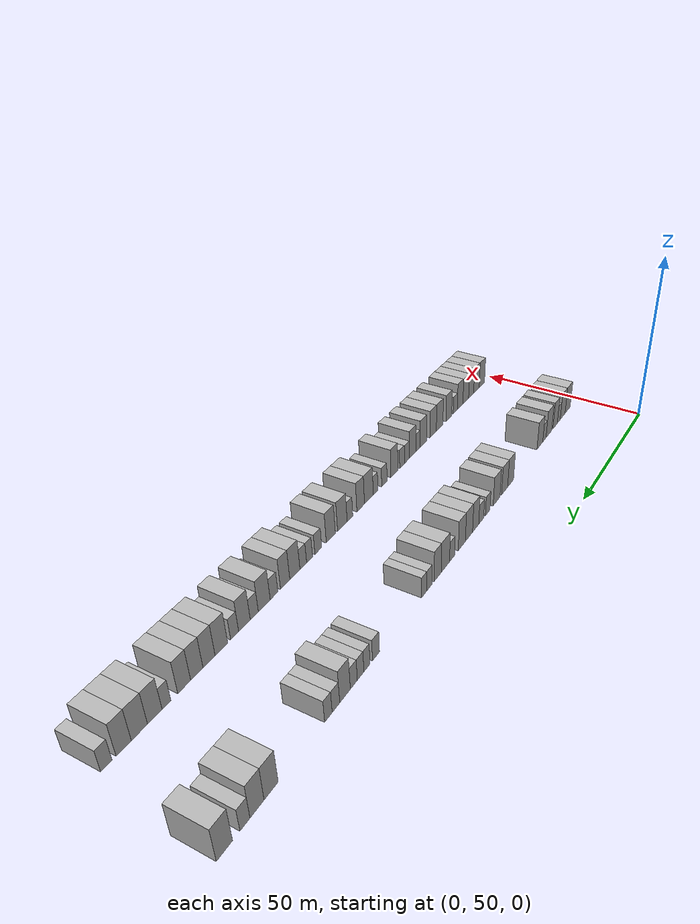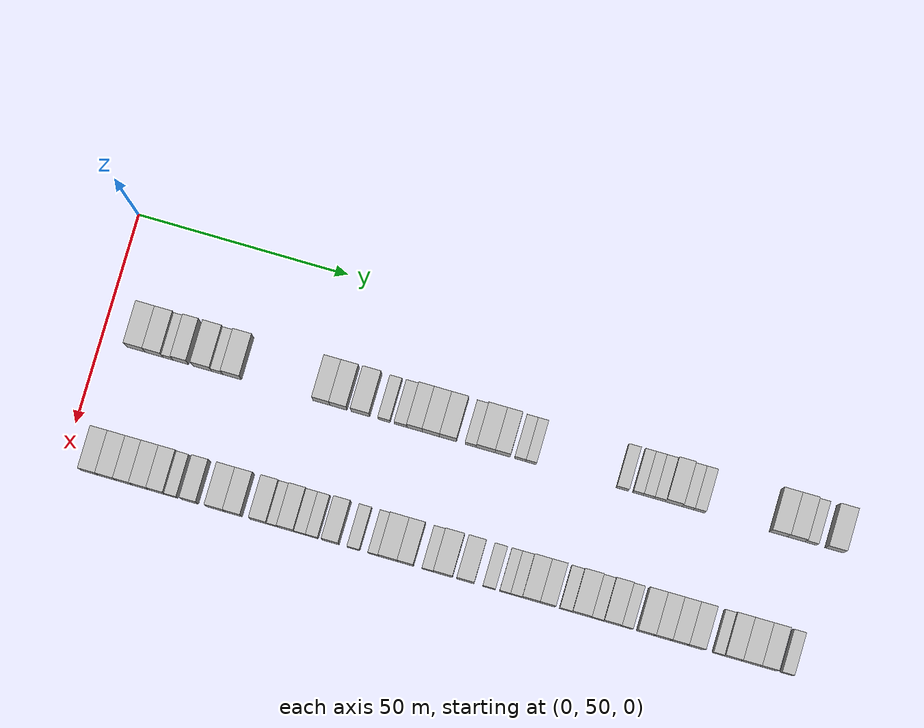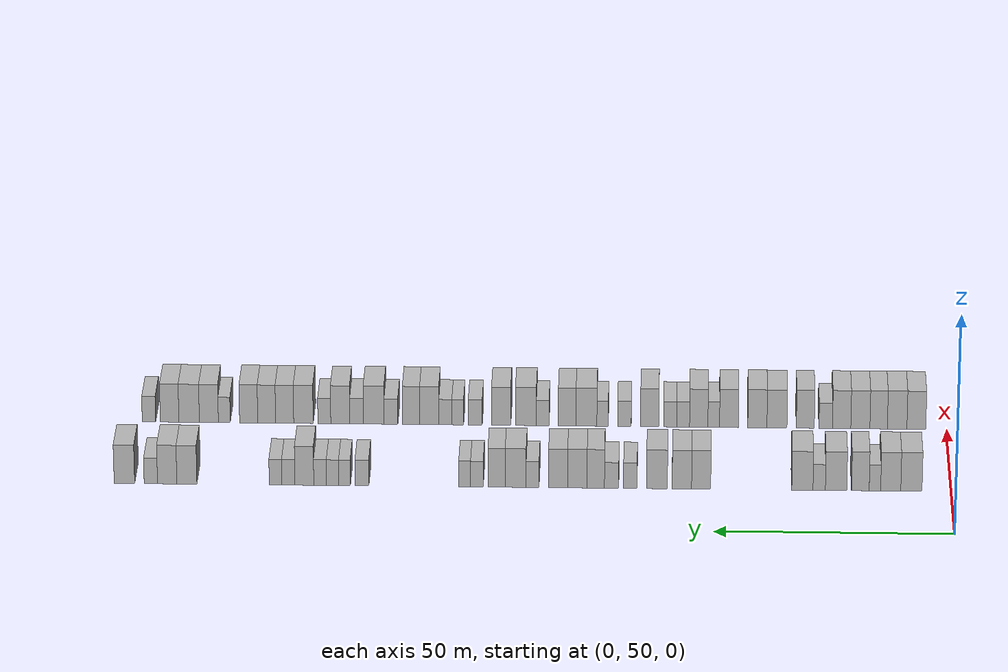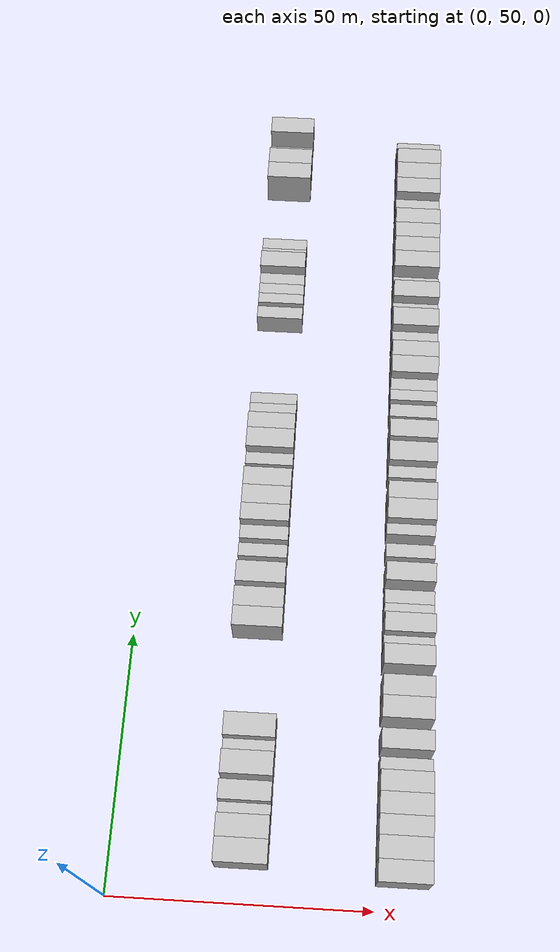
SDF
<sdf version="1.6">
 <world name="default">
  <model name="building_74">
   <static>1</static>
   <pose>25.0000 58.4364 0 0.000000 0.000000 0.000000</pose>
   <link name="link">
    <pose>0 0 4.50 0 0 0</pose>
    <collision name="collision"><geometry><box><size>10.0000 4.4470 9.0000</size></box></geometry></collision>
    <visual name="visual">
     <cast_shadows>0</cast_shadows>
     <geometry><box><size>10.0000 4.4470 9.0000</size></box></geometry>
     <material>
      <script>
       <uri>model://HANNAS_wall/materials/scripts</uri>
       <uri>model://HANNAS_wall/materials/textures</uri>
       <name>vrc/HANNAS_wall</name>
      </script>
     </material>
    </visual>
   </link>
  </model>
  <model name="building_75">
   <static>1</static>
   <pose>25.0000 62.7682 0 0.000000 0.000000 0.000000</pose>
   <link name="link">
    <pose>0 0 4.50 0 0 0</pose>
    <collision name="collision"><geometry><box><size>10.0000 4.2168 9.0000</size></box></geometry></collision>
    <visual name="visual">
     <cast_shadows>0</cast_shadows>
     <geometry><box><size>10.0000 4.2168 9.0000</size></box></geometry>
     <material>
      <script>
       <uri>model://HANNAS_wall/materials/scripts</uri>
       <uri>model://HANNAS_wall/materials/textures</uri>
       <name>vrc/HANNAS_wall</name>
      </script>
     </material>
    </visual>
   </link>
  </model>
  <model name="building_76">
   <static>1</static>
   <pose>25.0000 66.0802 0 0.000000 0.000000 0.000000</pose>
   <link name="link">
    <pose>0 0 3.00 0 0 0</pose>
    <collision name="collision"><geometry><box><size>10.0000 2.4072 6.0000</size></box></geometry></collision>
    <visual name="visual">
     <cast_shadows>0</cast_shadows>
     <geometry><box><size>10.0000 2.4072 6.0000</size></box></geometry>
     <material>
      <script>
       <uri>model://HANNAS_wall/materials/scripts</uri>
       <uri>model://HANNAS_wall/materials/textures</uri>
       <name>vrc/HANNAS_wall</name>
      </script>
     </material>
    </visual>
   </link>
  </model>
  <model name="building_77">
   <static>1</static>
   <pose>25.0000 69.1324 0 0.000000 0.000000 0.000000</pose>
   <link name="link">
    <pose>0 0 4.50 0 0 0</pose>
    <collision name="collision"><geometry><box><size>10.0000 3.6971 9.0000</size></box></geometry></collision>
    <visual name="visual">
     <cast_shadows>0</cast_shadows>
     <geometry><box><size>10.0000 3.6971 9.0000</size></box></geometry>
     <material>
      <script>
       <uri>model://HANNAS_wall/materials/scripts</uri>
       <uri>model://HANNAS_wall/materials/textures</uri>
       <name>vrc/HANNAS_wall</name>
      </script>
     </material>
    </visual>
   </link>
  </model>
  <model name="building_78">
   <static>1</static>
   <pose>25.0000 74.2274 0 0.000000 0.000000 0.000000</pose>
   <link name="link">
    <pose>0 0 4.50 0 0 0</pose>
    <collision name="collision"><geometry><box><size>10.0000 4.4929 9.0000</size></box></geometry></collision>
    <visual name="visual">
     <cast_shadows>0</cast_shadows>
     <geometry><box><size>10.0000 4.4929 9.0000</size></box></geometry>
     <material>
      <script>
       <uri>model://HANNAS_wall/materials/scripts</uri>
       <uri>model://HANNAS_wall/materials/textures</uri>
       <name>vrc/HANNAS_wall</name>
      </script>
     </material>
    </visual>
   </link>
  </model>
  <model name="building_79">
   <static>1</static>
   <pose>25.0000 77.7730 0 0.000000 0.000000 0.000000</pose>
   <link name="link">
    <pose>0 0 3.00 0 0 0</pose>
    <collision name="collision"><geometry><box><size>10.0000 2.5983 6.0000</size></box></geometry></collision>
    <visual name="visual">
     <cast_shadows>0</cast_shadows>
     <geometry><box><size>10.0000 2.5983 6.0000</size></box></geometry>
     <material>
      <script>
       <uri>model://HANNAS_wall/materials/scripts</uri>
       <uri>model://HANNAS_wall/materials/textures</uri>
       <name>vrc/HANNAS_wall</name>
      </script>
     </material>
    </visual>
   </link>
  </model>
  <model name="building_80">
   <static>1</static>
   <pose>25.0000 81.2971 0 0.000000 0.000000 0.000000</pose>
   <link name="link">
    <pose>0 0 4.50 0 0 0</pose>
    <collision name="collision"><geometry><box><size>10.0000 4.4498 9.0000</size></box></geometry></collision>
    <visual name="visual">
     <cast_shadows>0</cast_shadows>
     <geometry><box><size>10.0000 4.4498 9.0000</size></box></geometry>
     <material>
      <script>
       <uri>model://HANNAS_wall/materials/scripts</uri>
       <uri>model://HANNAS_wall/materials/textures</uri>
       <name>vrc/HANNAS_wall</name>
      </script>
     </material>
    </visual>
   </link>
  </model>
  <model name="building_81">
   <static>1</static>
   <pose>25.0000 102.5410 0 0.000000 0.000000 0.000000</pose>
   <link name="link">
    <pose>0 0 4.50 0 0 0</pose>
    <collision name="collision"><geometry><box><size>10.0000 4.0126 9.0000</size></box></geometry></collision>
    <visual name="visual">
     <cast_shadows>0</cast_shadows>
     <geometry><box><size>10.0000 4.0126 9.0000</size></box></geometry>
     <material>
      <script>
       <uri>model://HANNAS_wall/materials/scripts</uri>
       <uri>model://HANNAS_wall/materials/textures</uri>
       <name>vrc/HANNAS_wall</name>
      </script>
     </material>
    </visual>
   </link>
  </model>
  <model name="building_82">
   <static>1</static>
   <pose>25.0000 106.5819 0 0.000000 0.000000 0.000000</pose>
   <link name="link">
    <pose>0 0 4.50 0 0 0</pose>
    <collision name="collision"><geometry><box><size>10.0000 4.0693 9.0000</size></box></geometry></collision>
    <visual name="visual">
     <cast_shadows>0</cast_shadows>
     <geometry><box><size>10.0000 4.0693 9.0000</size></box></geometry>
     <material>
      <script>
       <uri>model://HANNAS_wall/materials/scripts</uri>
       <uri>model://HANNAS_wall/materials/textures</uri>
       <name>vrc/HANNAS_wall</name>
      </script>
     </material>
    </visual>
   </link>
  </model>
  <model name="building_83">
   <static>1</static>
   <pose>25.0000 111.8048 0 0.000000 0.000000 0.000000</pose>
   <link name="link">
    <pose>0 0 4.50 0 0 0</pose>
    <collision name="collision"><geometry><box><size>10.0000 4.3765 9.0000</size></box></geometry></collision>
    <visual name="visual">
     <cast_shadows>0</cast_shadows>
     <geometry><box><size>10.0000 4.3765 9.0000</size></box></geometry>
     <material>
      <script>
       <uri>model://HANNAS_wall/materials/scripts</uri>
       <uri>model://HANNAS_wall/materials/textures</uri>
       <name>vrc/HANNAS_wall</name>
      </script>
     </material>
    </visual>
   </link>
  </model>
  <model name="building_84">
   <static>1</static>
   <pose>25.0000 117.4179 0 0.000000 0.000000 0.000000</pose>
   <link name="link">
    <pose>0 0 3.00 0 0 0</pose>
    <collision name="collision"><geometry><box><size>10.0000 2.8498 6.0000</size></box></geometry></collision>
    <visual name="visual">
     <cast_shadows>0</cast_shadows>
     <geometry><box><size>10.0000 2.8498 6.0000</size></box></geometry>
     <material>
      <script>
       <uri>model://HANNAS_wall/materials/scripts</uri>
       <uri>model://HANNAS_wall/materials/textures</uri>
       <name>vrc/HANNAS_wall</name>
      </script>
     </material>
    </visual>
   </link>
  </model>
  <model name="building_85">
   <static>1</static>
   <pose>25.0000 121.3395 0 0.000000 0.000000 0.000000</pose>
   <link name="link">
    <pose>0 0 3.00 0 0 0</pose>
    <collision name="collision"><geometry><box><size>10.0000 2.9932 6.0000</size></box></geometry></collision>
    <visual name="visual">
     <cast_shadows>0</cast_shadows>
     <geometry><box><size>10.0000 2.9932 6.0000</size></box></geometry>
     <material>
      <script>
       <uri>model://HANNAS_wall/materials/scripts</uri>
       <uri>model://HANNAS_wall/materials/textures</uri>
       <name>vrc/HANNAS_wall</name>
      </script>
     </material>
    </visual>
   </link>
  </model>
  <model name="building_86">
   <static>1</static>
   <pose>25.0000 124.6564 0 0.000000 0.000000 0.000000</pose>
   <link name="link">
    <pose>0 0 4.50 0 0 0</pose>
    <collision name="collision"><geometry><box><size>10.0000 3.6406 9.0000</size></box></geometry></collision>
    <visual name="visual">
     <cast_shadows>0</cast_shadows>
     <geometry><box><size>10.0000 3.6406 9.0000</size></box></geometry>
     <material>
      <script>
       <uri>model://HANNAS_wall/materials/scripts</uri>
       <uri>model://HANNAS_wall/materials/textures</uri>
       <name>vrc/HANNAS_wall</name>
      </script>
     </material>
    </visual>
   </link>
  </model>
  <model name="building_87">
   <static>1</static>
   <pose>25.0000 128.5270 0 0.000000 0.000000 0.000000</pose>
   <link name="link">
    <pose>0 0 4.50 0 0 0</pose>
    <collision name="collision"><geometry><box><size>10.0000 4.1006 9.0000</size></box></geometry></collision>
    <visual name="visual">
     <cast_shadows>0</cast_shadows>
     <geometry><box><size>10.0000 4.1006 9.0000</size></box></geometry>
     <material>
      <script>
       <uri>model://HANNAS_wall/materials/scripts</uri>
       <uri>model://HANNAS_wall/materials/textures</uri>
       <name>vrc/HANNAS_wall</name>
      </script>
     </material>
    </visual>
   </link>
  </model>
  <model name="building_88">
   <static>1</static>
   <pose>25.0000 132.5769 0 0.000000 0.000000 0.000000</pose>
   <link name="link">
    <pose>0 0 4.50 0 0 0</pose>
    <collision name="collision"><geometry><box><size>10.0000 3.9992 9.0000</size></box></geometry></collision>
    <visual name="visual">
     <cast_shadows>0</cast_shadows>
     <geometry><box><size>10.0000 3.9992 9.0000</size></box></geometry>
     <material>
      <script>
       <uri>model://HANNAS_wall/materials/scripts</uri>
       <uri>model://HANNAS_wall/materials/textures</uri>
       <name>vrc/HANNAS_wall</name>
      </script>
     </material>
    </visual>
   </link>
  </model>
  <model name="building_89">
   <static>1</static>
   <pose>25.0000 137.9296 0 0.000000 0.000000 0.000000</pose>
   <link name="link">
    <pose>0 0 3.00 0 0 0</pose>
    <collision name="collision"><geometry><box><size>10.0000 2.7063 6.0000</size></box></geometry></collision>
    <visual name="visual">
     <cast_shadows>0</cast_shadows>
     <geometry><box><size>10.0000 2.7063 6.0000</size></box></geometry>
     <material>
      <script>
       <uri>model://HANNAS_wall/materials/scripts</uri>
       <uri>model://HANNAS_wall/materials/textures</uri>
       <name>vrc/HANNAS_wall</name>
      </script>
     </material>
    </visual>
   </link>
  </model>
  <model name="building_90">
   <static>1</static>
   <pose>25.0000 141.4852 0 0.000000 0.000000 0.000000</pose>
   <link name="link">
    <pose>0 0 4.50 0 0 0</pose>
    <collision name="collision"><geometry><box><size>10.0000 4.4048 9.0000</size></box></geometry></collision>
    <visual name="visual">
     <cast_shadows>0</cast_shadows>
     <geometry><box><size>10.0000 4.4048 9.0000</size></box></geometry>
     <material>
      <script>
       <uri>model://HANNAS_wall/materials/scripts</uri>
       <uri>model://HANNAS_wall/materials/textures</uri>
       <name>vrc/HANNAS_wall</name>
      </script>
     </material>
    </visual>
   </link>
  </model>
  <model name="building_91">
   <static>1</static>
   <pose>25.0000 145.4940 0 0.000000 0.000000 0.000000</pose>
   <link name="link">
    <pose>0 0 4.50 0 0 0</pose>
    <collision name="collision"><geometry><box><size>10.0000 3.6129 9.0000</size></box></geometry></collision>
    <visual name="visual">
     <cast_shadows>0</cast_shadows>
     <geometry><box><size>10.0000 3.6129 9.0000</size></box></geometry>
     <material>
      <script>
       <uri>model://HANNAS_wall/materials/scripts</uri>
       <uri>model://HANNAS_wall/materials/textures</uri>
       <name>vrc/HANNAS_wall</name>
      </script>
     </material>
    </visual>
   </link>
  </model>
  <model name="building_92">
   <static>1</static>
   <pose>25.0000 149.6299 0 0.000000 0.000000 0.000000</pose>
   <link name="link">
    <pose>0 0 3.00 0 0 0</pose>
    <collision name="collision"><geometry><box><size>10.0000 2.6588 6.0000</size></box></geometry></collision>
    <visual name="visual">
     <cast_shadows>0</cast_shadows>
     <geometry><box><size>10.0000 2.6588 6.0000</size></box></geometry>
     <material>
      <script>
       <uri>model://HANNAS_wall/materials/scripts</uri>
       <uri>model://HANNAS_wall/materials/textures</uri>
       <name>vrc/HANNAS_wall</name>
      </script>
     </material>
    </visual>
   </link>
  </model>
  <model name="building_93">
   <static>1</static>
   <pose>25.0000 152.2024 0 0.000000 0.000000 0.000000</pose>
   <link name="link">
    <pose>0 0 3.00 0 0 0</pose>
    <collision name="collision"><geometry><box><size>10.0000 2.4861 6.0000</size></box></geometry></collision>
    <visual name="visual">
     <cast_shadows>0</cast_shadows>
     <geometry><box><size>10.0000 2.4861 6.0000</size></box></geometry>
     <material>
      <script>
       <uri>model://HANNAS_wall/materials/scripts</uri>
       <uri>model://HANNAS_wall/materials/textures</uri>
       <name>vrc/HANNAS_wall</name>
      </script>
     </material>
    </visual>
   </link>
  </model>
  <model name="building_94">
   <static>1</static>
   <pose>25.0000 173.7873 0 0.000000 0.000000 0.000000</pose>
   <link name="link">
    <pose>0 0 3.00 0 0 0</pose>
    <collision name="collision"><geometry><box><size>10.0000 2.8946 6.0000</size></box></geometry></collision>
    <visual name="visual">
     <cast_shadows>0</cast_shadows>
     <geometry><box><size>10.0000 2.8946 6.0000</size></box></geometry>
     <material>
      <script>
       <uri>model://HANNAS_wall/materials/scripts</uri>
       <uri>model://HANNAS_wall/materials/textures</uri>
       <name>vrc/HANNAS_wall</name>
      </script>
     </material>
    </visual>
   </link>
  </model>
  <model name="building_95">
   <static>1</static>
   <pose>25.0000 177.4593 0 0.000000 0.000000 0.000000</pose>
   <link name="link">
    <pose>0 0 3.00 0 0 0</pose>
    <collision name="collision"><geometry><box><size>10.0000 2.4493 6.0000</size></box></geometry></collision>
    <visual name="visual">
     <cast_shadows>0</cast_shadows>
     <geometry><box><size>10.0000 2.4493 6.0000</size></box></geometry>
     <material>
      <script>
       <uri>model://HANNAS_wall/materials/scripts</uri>
       <uri>model://HANNAS_wall/materials/textures</uri>
       <name>vrc/HANNAS_wall</name>
      </script>
     </material>
    </visual>
   </link>
  </model>
  <model name="building_96">
   <static>1</static>
   <pose>25.0000 179.9692 0 0.000000 0.000000 0.000000</pose>
   <link name="link">
    <pose>0 0 3.00 0 0 0</pose>
    <collision name="collision"><geometry><box><size>10.0000 2.5704 6.0000</size></box></geometry></collision>
    <visual name="visual">
     <cast_shadows>0</cast_shadows>
     <geometry><box><size>10.0000 2.5704 6.0000</size></box></geometry>
     <material>
      <script>
       <uri>model://HANNAS_wall/materials/scripts</uri>
       <uri>model://HANNAS_wall/materials/textures</uri>
       <name>vrc/HANNAS_wall</name>
      </script>
     </material>
    </visual>
   </link>
  </model>
  <model name="building_97">
   <static>1</static>
   <pose>25.0000 182.5951 0 0.000000 0.000000 0.000000</pose>
   <link name="link">
    <pose>0 0 3.00 0 0 0</pose>
    <collision name="collision"><geometry><box><size>10.0000 2.6813 6.0000</size></box></geometry></collision>
    <visual name="visual">
     <cast_shadows>0</cast_shadows>
     <geometry><box><size>10.0000 2.6813 6.0000</size></box></geometry>
     <material>
      <script>
       <uri>model://HANNAS_wall/materials/scripts</uri>
       <uri>model://HANNAS_wall/materials/textures</uri>
       <name>vrc/HANNAS_wall</name>
      </script>
     </material>
    </visual>
   </link>
  </model>
  <model name="building_98">
   <static>1</static>
   <pose>25.0000 185.9147 0 0.000000 0.000000 0.000000</pose>
   <link name="link">
    <pose>0 0 4.50 0 0 0</pose>
    <collision name="collision"><geometry><box><size>10.0000 3.9581 9.0000</size></box></geometry></collision>
    <visual name="visual">
     <cast_shadows>0</cast_shadows>
     <geometry><box><size>10.0000 3.9581 9.0000</size></box></geometry>
     <material>
      <script>
       <uri>model://HANNAS_wall/materials/scripts</uri>
       <uri>model://HANNAS_wall/materials/textures</uri>
       <name>vrc/HANNAS_wall</name>
      </script>
     </material>
    </visual>
   </link>
  </model>
  <model name="building_99">
   <static>1</static>
   <pose>25.0000 189.2692 0 0.000000 0.000000 0.000000</pose>
   <link name="link">
    <pose>0 0 3.00 0 0 0</pose>
    <collision name="collision"><geometry><box><size>10.0000 2.7509 6.0000</size></box></geometry></collision>
    <visual name="visual">
     <cast_shadows>0</cast_shadows>
     <geometry><box><size>10.0000 2.7509 6.0000</size></box></geometry>
     <material>
      <script>
       <uri>model://HANNAS_wall/materials/scripts</uri>
       <uri>model://HANNAS_wall/materials/textures</uri>
       <name>vrc/HANNAS_wall</name>
      </script>
     </material>
    </visual>
   </link>
  </model>
  <model name="building_100">
   <static>1</static>
   <pose>25.0000 191.9741 0 0.000000 0.000000 0.000000</pose>
   <link name="link">
    <pose>0 0 3.00 0 0 0</pose>
    <collision name="collision"><geometry><box><size>10.0000 2.6590 6.0000</size></box></geometry></collision>
    <visual name="visual">
     <cast_shadows>0</cast_shadows>
     <geometry><box><size>10.0000 2.6590 6.0000</size></box></geometry>
     <material>
      <script>
       <uri>model://HANNAS_wall/materials/scripts</uri>
       <uri>model://HANNAS_wall/materials/textures</uri>
       <name>vrc/HANNAS_wall</name>
      </script>
     </material>
    </visual>
   </link>
  </model>
  <model name="building_101">
   <static>1</static>
   <pose>25.0000 210.6420 0 0.000000 0.000000 0.000000</pose>
   <link name="link">
    <pose>0 0 4.50 0 0 0</pose>
    <collision name="collision"><geometry><box><size>10.0000 4.2256 9.0000</size></box></geometry></collision>
    <visual name="visual">
     <cast_shadows>0</cast_shadows>
     <geometry><box><size>10.0000 4.2256 9.0000</size></box></geometry>
     <material>
      <script>
       <uri>model://HANNAS_wall/materials/scripts</uri>
       <uri>model://HANNAS_wall/materials/textures</uri>
       <name>vrc/HANNAS_wall</name>
      </script>
     </material>
    </visual>
   </link>
  </model>
  <model name="building_102">
   <static>1</static>
   <pose>25.0000 214.7899 0 0.000000 0.000000 0.000000</pose>
   <link name="link">
    <pose>0 0 4.50 0 0 0</pose>
    <collision name="collision"><geometry><box><size>10.0000 4.0702 9.0000</size></box></geometry></collision>
    <visual name="visual">
     <cast_shadows>0</cast_shadows>
     <geometry><box><size>10.0000 4.0702 9.0000</size></box></geometry>
     <material>
      <script>
       <uri>model://HANNAS_wall/materials/scripts</uri>
       <uri>model://HANNAS_wall/materials/textures</uri>
       <name>vrc/HANNAS_wall</name>
      </script>
     </material>
    </visual>
   </link>
  </model>
  <model name="building_103">
   <static>1</static>
   <pose>25.0000 218.2311 0 0.000000 0.000000 0.000000</pose>
   <link name="link">
    <pose>0 0 3.00 0 0 0</pose>
    <collision name="collision"><geometry><box><size>10.0000 2.8124 6.0000</size></box></geometry></collision>
    <visual name="visual">
     <cast_shadows>0</cast_shadows>
     <geometry><box><size>10.0000 2.8124 6.0000</size></box></geometry>
     <material>
      <script>
       <uri>model://HANNAS_wall/materials/scripts</uri>
       <uri>model://HANNAS_wall/materials/textures</uri>
       <name>vrc/HANNAS_wall</name>
      </script>
     </material>
    </visual>
   </link>
  </model>
  <model name="building_104">
   <static>1</static>
   <pose>25.0000 223.7945 0 0.000000 0.000000 0.000000</pose>
   <link name="link">
    <pose>0 0 4.50 0 0 0</pose>
    <collision name="collision"><geometry><box><size>10.0000 4.3144 9.0000</size></box></geometry></collision>
    <visual name="visual">
     <cast_shadows>0</cast_shadows>
     <geometry><box><size>10.0000 4.3144 9.0000</size></box></geometry>
     <material>
      <script>
       <uri>model://HANNAS_wall/materials/scripts</uri>
       <uri>model://HANNAS_wall/materials/textures</uri>
       <name>vrc/HANNAS_wall</name>
      </script>
     </material>
    </visual>
   </link>
  </model>
  <model name="building_176">
   <static>1</static>
   <pose>55.0000 56.4914 0 0.000000 0.000000 0.000000</pose>
   <link name="link">
    <pose>0 0 4.50 0 0 0</pose>
    <collision name="collision"><geometry><box><size>10.0000 4.0352 9.0000</size></box></geometry></collision>
    <visual name="visual">
     <cast_shadows>0</cast_shadows>
     <geometry><box><size>10.0000 4.0352 9.0000</size></box></geometry>
     <material>
      <script>
       <uri>model://HANNAS_wall/materials/scripts</uri>
       <uri>model://HANNAS_wall/materials/textures</uri>
       <name>vrc/HANNAS_wall</name>
      </script>
     </material>
    </visual>
   </link>
  </model>
  <model name="building_177">
   <static>1</static>
   <pose>55.0000 60.6003 0 0.000000 0.000000 0.000000</pose>
   <link name="link">
    <pose>0 0 4.50 0 0 0</pose>
    <collision name="collision"><geometry><box><size>10.0000 4.1827 9.0000</size></box></geometry></collision>
    <visual name="visual">
     <cast_shadows>0</cast_shadows>
     <geometry><box><size>10.0000 4.1827 9.0000</size></box></geometry>
     <material>
      <script>
       <uri>model://HANNAS_wall/materials/scripts</uri>
       <uri>model://HANNAS_wall/materials/textures</uri>
       <name>vrc/HANNAS_wall</name>
      </script>
     </material>
    </visual>
   </link>
  </model>
  <model name="building_178">
   <static>1</static>
   <pose>55.0000 64.5555 0 0.000000 0.000000 0.000000</pose>
   <link name="link">
    <pose>0 0 4.50 0 0 0</pose>
    <collision name="collision"><geometry><box><size>10.0000 3.7278 9.0000</size></box></geometry></collision>
    <visual name="visual">
     <cast_shadows>0</cast_shadows>
     <geometry><box><size>10.0000 3.7278 9.0000</size></box></geometry>
     <material>
      <script>
       <uri>model://HANNAS_wall/materials/scripts</uri>
       <uri>model://HANNAS_wall/materials/textures</uri>
       <name>vrc/HANNAS_wall</name>
      </script>
     </material>
    </visual>
   </link>
  </model>
  <model name="building_179">
   <static>1</static>
   <pose>55.0000 68.4614 0 0.000000 0.000000 0.000000</pose>
   <link name="link">
    <pose>0 0 4.50 0 0 0</pose>
    <collision name="collision"><geometry><box><size>10.0000 4.0839 9.0000</size></box></geometry></collision>
    <visual name="visual">
     <cast_shadows>0</cast_shadows>
     <geometry><box><size>10.0000 4.0839 9.0000</size></box></geometry>
     <material>
      <script>
       <uri>model://HANNAS_wall/materials/scripts</uri>
       <uri>model://HANNAS_wall/materials/textures</uri>
       <name>vrc/HANNAS_wall</name>
      </script>
     </material>
    </visual>
   </link>
  </model>
  <model name="building_180">
   <static>1</static>
   <pose>55.0000 72.4666 0 0.000000 0.000000 0.000000</pose>
   <link name="link">
    <pose>0 0 4.50 0 0 0</pose>
    <collision name="collision"><geometry><box><size>10.0000 3.9265 9.0000</size></box></geometry></collision>
    <visual name="visual">
     <cast_shadows>0</cast_shadows>
     <geometry><box><size>10.0000 3.9265 9.0000</size></box></geometry>
     <material>
      <script>
       <uri>model://HANNAS_wall/materials/scripts</uri>
       <uri>model://HANNAS_wall/materials/textures</uri>
       <name>vrc/HANNAS_wall</name>
      </script>
     </material>
    </visual>
   </link>
  </model>
  <model name="building_181">
   <static>1</static>
   <pose>55.0000 75.8682 0 0.000000 0.000000 0.000000</pose>
   <link name="link">
    <pose>0 0 3.00 0 0 0</pose>
    <collision name="collision"><geometry><box><size>10.0000 2.8766 6.0000</size></box></geometry></collision>
    <visual name="visual">
     <cast_shadows>0</cast_shadows>
     <geometry><box><size>10.0000 2.8766 6.0000</size></box></geometry>
     <material>
      <script>
       <uri>model://HANNAS_wall/materials/scripts</uri>
       <uri>model://HANNAS_wall/materials/textures</uri>
       <name>vrc/HANNAS_wall</name>
      </script>
     </material>
    </visual>
   </link>
  </model>
  <model name="building_182">
   <static>1</static>
   <pose>55.0000 80.2283 0 0.000000 0.000000 0.000000</pose>
   <link name="link">
    <pose>0 0 4.50 0 0 0</pose>
    <collision name="collision"><geometry><box><size>10.0000 3.8437 9.0000</size></box></geometry></collision>
    <visual name="visual">
     <cast_shadows>0</cast_shadows>
     <geometry><box><size>10.0000 3.8437 9.0000</size></box></geometry>
     <material>
      <script>
       <uri>model://HANNAS_wall/materials/scripts</uri>
       <uri>model://HANNAS_wall/materials/textures</uri>
       <name>vrc/HANNAS_wall</name>
      </script>
     </material>
    </visual>
   </link>
  </model>
  <model name="building_183">
   <static>1</static>
   <pose>55.0000 86.2963 0 0.000000 0.000000 0.000000</pose>
   <link name="link">
    <pose>0 0 4.50 0 0 0</pose>
    <collision name="collision"><geometry><box><size>10.0000 4.2923 9.0000</size></box></geometry></collision>
    <visual name="visual">
     <cast_shadows>0</cast_shadows>
     <geometry><box><size>10.0000 4.2923 9.0000</size></box></geometry>
     <material>
      <script>
       <uri>model://HANNAS_wall/materials/scripts</uri>
       <uri>model://HANNAS_wall/materials/textures</uri>
       <name>vrc/HANNAS_wall</name>
      </script>
     </material>
    </visual>
   </link>
  </model>
  <model name="building_184">
   <static>1</static>
   <pose>55.0000 90.4893 0 0.000000 0.000000 0.000000</pose>
   <link name="link">
    <pose>0 0 4.50 0 0 0</pose>
    <collision name="collision"><geometry><box><size>10.0000 4.0936 9.0000</size></box></geometry></collision>
    <visual name="visual">
     <cast_shadows>0</cast_shadows>
     <geometry><box><size>10.0000 4.0936 9.0000</size></box></geometry>
     <material>
      <script>
       <uri>model://HANNAS_wall/materials/scripts</uri>
       <uri>model://HANNAS_wall/materials/textures</uri>
       <name>vrc/HANNAS_wall</name>
      </script>
     </material>
    </visual>
   </link>
  </model>
  <model name="building_185">
   <static>1</static>
   <pose>55.0000 96.5590 0 0.000000 0.000000 0.000000</pose>
   <link name="link">
    <pose>0 0 4.50 0 0 0</pose>
    <collision name="collision"><geometry><box><size>10.0000 4.0458 9.0000</size></box></geometry></collision>
    <visual name="visual">
     <cast_shadows>0</cast_shadows>
     <geometry><box><size>10.0000 4.0458 9.0000</size></box></geometry>
     <material>
      <script>
       <uri>model://HANNAS_wall/materials/scripts</uri>
       <uri>model://HANNAS_wall/materials/textures</uri>
       <name>vrc/HANNAS_wall</name>
      </script>
     </material>
    </visual>
   </link>
  </model>
  <model name="building_186">
   <static>1</static>
   <pose>55.0000 99.8261 0 0.000000 0.000000 0.000000</pose>
   <link name="link">
    <pose>0 0 3.00 0 0 0</pose>
    <collision name="collision"><geometry><box><size>10.0000 2.4885 6.0000</size></box></geometry></collision>
    <visual name="visual">
     <cast_shadows>0</cast_shadows>
     <geometry><box><size>10.0000 2.4885 6.0000</size></box></geometry>
     <material>
      <script>
       <uri>model://HANNAS_wall/materials/scripts</uri>
       <uri>model://HANNAS_wall/materials/textures</uri>
       <name>vrc/HANNAS_wall</name>
      </script>
     </material>
    </visual>
   </link>
  </model>
  <model name="building_187">
   <static>1</static>
   <pose>55.0000 103.0342 0 0.000000 0.000000 0.000000</pose>
   <link name="link">
    <pose>0 0 4.50 0 0 0</pose>
    <collision name="collision"><geometry><box><size>10.0000 3.9277 9.0000</size></box></geometry></collision>
    <visual name="visual">
     <cast_shadows>0</cast_shadows>
     <geometry><box><size>10.0000 3.9277 9.0000</size></box></geometry>
     <material>
      <script>
       <uri>model://HANNAS_wall/materials/scripts</uri>
       <uri>model://HANNAS_wall/materials/textures</uri>
       <name>vrc/HANNAS_wall</name>
      </script>
     </material>
    </visual>
   </link>
  </model>
  <model name="building_188">
   <static>1</static>
   <pose>55.0000 106.3616 0 0.000000 0.000000 0.000000</pose>
   <link name="link">
    <pose>0 0 3.00 0 0 0</pose>
    <collision name="collision"><geometry><box><size>10.0000 2.7270 6.0000</size></box></geometry></collision>
    <visual name="visual">
     <cast_shadows>0</cast_shadows>
     <geometry><box><size>10.0000 2.7270 6.0000</size></box></geometry>
     <material>
      <script>
       <uri>model://HANNAS_wall/materials/scripts</uri>
       <uri>model://HANNAS_wall/materials/textures</uri>
       <name>vrc/HANNAS_wall</name>
      </script>
     </material>
    </visual>
   </link>
  </model>
  <model name="building_189">
   <static>1</static>
   <pose>55.0000 109.1446 0 0.000000 0.000000 0.000000</pose>
   <link name="link">
    <pose>0 0 3.00 0 0 0</pose>
    <collision name="collision"><geometry><box><size>10.0000 2.8391 6.0000</size></box></geometry></collision>
    <visual name="visual">
     <cast_shadows>0</cast_shadows>
     <geometry><box><size>10.0000 2.8391 6.0000</size></box></geometry>
     <material>
      <script>
       <uri>model://HANNAS_wall/materials/scripts</uri>
       <uri>model://HANNAS_wall/materials/textures</uri>
       <name>vrc/HANNAS_wall</name>
      </script>
     </material>
    </visual>
   </link>
  </model>
  <model name="building_190">
   <static>1</static>
   <pose>55.0000 113.5258 0 0.000000 0.000000 0.000000</pose>
   <link name="link">
    <pose>0 0 4.50 0 0 0</pose>
    <collision name="collision"><geometry><box><size>10.0000 3.9232 9.0000</size></box></geometry></collision>
    <visual name="visual">
     <cast_shadows>0</cast_shadows>
     <geometry><box><size>10.0000 3.9232 9.0000</size></box></geometry>
     <material>
      <script>
       <uri>model://HANNAS_wall/materials/scripts</uri>
       <uri>model://HANNAS_wall/materials/textures</uri>
       <name>vrc/HANNAS_wall</name>
      </script>
     </material>
    </visual>
   </link>
  </model>
  <model name="building_191">
   <static>1</static>
   <pose>55.0000 118.9439 0 0.000000 0.000000 0.000000</pose>
   <link name="link">
    <pose>0 0 3.00 0 0 0</pose>
    <collision name="collision"><geometry><box><size>10.0000 2.9131 6.0000</size></box></geometry></collision>
    <visual name="visual">
     <cast_shadows>0</cast_shadows>
     <geometry><box><size>10.0000 2.9131 6.0000</size></box></geometry>
     <material>
      <script>
       <uri>model://HANNAS_wall/materials/scripts</uri>
       <uri>model://HANNAS_wall/materials/textures</uri>
       <name>vrc/HANNAS_wall</name>
      </script>
     </material>
    </visual>
   </link>
  </model>
  <model name="building_192">
   <static>1</static>
   <pose>55.0000 123.6167 0 0.000000 0.000000 0.000000</pose>
   <link name="link">
    <pose>0 0 3.00 0 0 0</pose>
    <collision name="collision"><geometry><box><size>10.0000 2.4324 6.0000</size></box></geometry></collision>
    <visual name="visual">
     <cast_shadows>0</cast_shadows>
     <geometry><box><size>10.0000 2.4324 6.0000</size></box></geometry>
     <material>
      <script>
       <uri>model://HANNAS_wall/materials/scripts</uri>
       <uri>model://HANNAS_wall/materials/textures</uri>
       <name>vrc/HANNAS_wall</name>
      </script>
     </material>
    </visual>
   </link>
  </model>
  <model name="building_193">
   <static>1</static>
   <pose>55.0000 127.0736 0 0.000000 0.000000 0.000000</pose>
   <link name="link">
    <pose>0 0 4.50 0 0 0</pose>
    <collision name="collision"><geometry><box><size>10.0000 4.4814 9.0000</size></box></geometry></collision>
    <visual name="visual">
     <cast_shadows>0</cast_shadows>
     <geometry><box><size>10.0000 4.4814 9.0000</size></box></geometry>
     <material>
      <script>
       <uri>model://HANNAS_wall/materials/scripts</uri>
       <uri>model://HANNAS_wall/materials/textures</uri>
       <name>vrc/HANNAS_wall</name>
      </script>
     </material>
    </visual>
   </link>
  </model>
  <model name="building_194">
   <static>1</static>
   <pose>55.0000 131.2023 0 0.000000 0.000000 0.000000</pose>
   <link name="link">
    <pose>0 0 4.50 0 0 0</pose>
    <collision name="collision"><geometry><box><size>10.0000 3.7761 9.0000</size></box></geometry></collision>
    <visual name="visual">
     <cast_shadows>0</cast_shadows>
     <geometry><box><size>10.0000 3.7761 9.0000</size></box></geometry>
     <material>
      <script>
       <uri>model://HANNAS_wall/materials/scripts</uri>
       <uri>model://HANNAS_wall/materials/textures</uri>
       <name>vrc/HANNAS_wall</name>
      </script>
     </material>
    </visual>
   </link>
  </model>
  <model name="building_195">
   <static>1</static>
   <pose>55.0000 136.4427 0 0.000000 0.000000 0.000000</pose>
   <link name="link">
    <pose>0 0 3.00 0 0 0</pose>
    <collision name="collision"><geometry><box><size>10.0000 2.7045 6.0000</size></box></geometry></collision>
    <visual name="visual">
     <cast_shadows>0</cast_shadows>
     <geometry><box><size>10.0000 2.7045 6.0000</size></box></geometry>
     <material>
      <script>
       <uri>model://HANNAS_wall/materials/scripts</uri>
       <uri>model://HANNAS_wall/materials/textures</uri>
       <name>vrc/HANNAS_wall</name>
      </script>
     </material>
    </visual>
   </link>
  </model>
  <model name="building_196">
   <static>1</static>
   <pose>55.0000 140.0375 0 0.000000 0.000000 0.000000</pose>
   <link name="link">
    <pose>0 0 4.50 0 0 0</pose>
    <collision name="collision"><geometry><box><size>10.0000 4.4852 9.0000</size></box></geometry></collision>
    <visual name="visual">
     <cast_shadows>0</cast_shadows>
     <geometry><box><size>10.0000 4.4852 9.0000</size></box></geometry>
     <material>
      <script>
       <uri>model://HANNAS_wall/materials/scripts</uri>
       <uri>model://HANNAS_wall/materials/textures</uri>
       <name>vrc/HANNAS_wall</name>
      </script>
     </material>
    </visual>
   </link>
  </model>
  <model name="building_197">
   <static>1</static>
   <pose>55.0000 145.3344 0 0.000000 0.000000 0.000000</pose>
   <link name="link">
    <pose>0 0 4.50 0 0 0</pose>
    <collision name="collision"><geometry><box><size>10.0000 4.1084 9.0000</size></box></geometry></collision>
    <visual name="visual">
     <cast_shadows>0</cast_shadows>
     <geometry><box><size>10.0000 4.1084 9.0000</size></box></geometry>
     <material>
      <script>
       <uri>model://HANNAS_wall/materials/scripts</uri>
       <uri>model://HANNAS_wall/materials/textures</uri>
       <name>vrc/HANNAS_wall</name>
      </script>
     </material>
    </visual>
   </link>
  </model>
  <model name="building_198">
   <static>1</static>
   <pose>55.0000 150.8839 0 0.000000 0.000000 0.000000</pose>
   <link name="link">
    <pose>0 0 3.00 0 0 0</pose>
    <collision name="collision"><geometry><box><size>10.0000 2.9907 6.0000</size></box></geometry></collision>
    <visual name="visual">
     <cast_shadows>0</cast_shadows>
     <geometry><box><size>10.0000 2.9907 6.0000</size></box></geometry>
     <material>
      <script>
       <uri>model://HANNAS_wall/materials/scripts</uri>
       <uri>model://HANNAS_wall/materials/textures</uri>
       <name>vrc/HANNAS_wall</name>
      </script>
     </material>
    </visual>
   </link>
  </model>
  <model name="building_199">
   <static>1</static>
   <pose>55.0000 154.6416 0 0.000000 0.000000 0.000000</pose>
   <link name="link">
    <pose>0 0 3.00 0 0 0</pose>
    <collision name="collision"><geometry><box><size>10.0000 2.5247 6.0000</size></box></geometry></collision>
    <visual name="visual">
     <cast_shadows>0</cast_shadows>
     <geometry><box><size>10.0000 2.5247 6.0000</size></box></geometry>
     <material>
      <script>
       <uri>model://HANNAS_wall/materials/scripts</uri>
       <uri>model://HANNAS_wall/materials/textures</uri>
       <name>vrc/HANNAS_wall</name>
      </script>
     </material>
    </visual>
   </link>
  </model>
  <model name="building_200">
   <static>1</static>
   <pose>55.0000 157.2893 0 0.000000 0.000000 0.000000</pose>
   <link name="link">
    <pose>0 0 3.00 0 0 0</pose>
    <collision name="collision"><geometry><box><size>10.0000 2.7706 6.0000</size></box></geometry></collision>
    <visual name="visual">
     <cast_shadows>0</cast_shadows>
     <geometry><box><size>10.0000 2.7706 6.0000</size></box></geometry>
     <material>
      <script>
       <uri>model://HANNAS_wall/materials/scripts</uri>
       <uri>model://HANNAS_wall/materials/textures</uri>
       <name>vrc/HANNAS_wall</name>
      </script>
     </material>
    </visual>
   </link>
  </model>
  <model name="building_201">
   <static>1</static>
   <pose>55.0000 160.7281 0 0.000000 0.000000 0.000000</pose>
   <link name="link">
    <pose>0 0 4.50 0 0 0</pose>
    <collision name="collision"><geometry><box><size>10.0000 4.1071 9.0000</size></box></geometry></collision>
    <visual name="visual">
     <cast_shadows>0</cast_shadows>
     <geometry><box><size>10.0000 4.1071 9.0000</size></box></geometry>
     <material>
      <script>
       <uri>model://HANNAS_wall/materials/scripts</uri>
       <uri>model://HANNAS_wall/materials/textures</uri>
       <name>vrc/HANNAS_wall</name>
      </script>
     </material>
    </visual>
   </link>
  </model>
  <model name="building_202">
   <static>1</static>
   <pose>55.0000 164.6285 0 0.000000 0.000000 0.000000</pose>
   <link name="link">
    <pose>0 0 4.50 0 0 0</pose>
    <collision name="collision"><geometry><box><size>10.0000 3.6937 9.0000</size></box></geometry></collision>
    <visual name="visual">
     <cast_shadows>0</cast_shadows>
     <geometry><box><size>10.0000 3.6937 9.0000</size></box></geometry>
     <material>
      <script>
       <uri>model://HANNAS_wall/materials/scripts</uri>
       <uri>model://HANNAS_wall/materials/textures</uri>
       <name>vrc/HANNAS_wall</name>
      </script>
     </material>
    </visual>
   </link>
  </model>
  <model name="building_203">
   <static>1</static>
   <pose>55.0000 168.9496 0 0.000000 0.000000 0.000000</pose>
   <link name="link">
    <pose>0 0 3.00 0 0 0</pose>
    <collision name="collision"><geometry><box><size>10.0000 2.9484 6.0000</size></box></geometry></collision>
    <visual name="visual">
     <cast_shadows>0</cast_shadows>
     <geometry><box><size>10.0000 2.9484 6.0000</size></box></geometry>
     <material>
      <script>
       <uri>model://HANNAS_wall/materials/scripts</uri>
       <uri>model://HANNAS_wall/materials/textures</uri>
       <name>vrc/HANNAS_wall</name>
      </script>
     </material>
    </visual>
   </link>
  </model>
  <model name="building_204">
   <static>1</static>
   <pose>55.0000 172.6414 0 0.000000 0.000000 0.000000</pose>
   <link name="link">
    <pose>0 0 4.50 0 0 0</pose>
    <collision name="collision"><geometry><box><size>10.0000 4.4352 9.0000</size></box></geometry></collision>
    <visual name="visual">
     <cast_shadows>0</cast_shadows>
     <geometry><box><size>10.0000 4.4352 9.0000</size></box></geometry>
     <material>
      <script>
       <uri>model://HANNAS_wall/materials/scripts</uri>
       <uri>model://HANNAS_wall/materials/textures</uri>
       <name>vrc/HANNAS_wall</name>
      </script>
     </material>
    </visual>
   </link>
  </model>
  <model name="building_205">
   <static>1</static>
   <pose>55.0000 176.3175 0 0.000000 0.000000 0.000000</pose>
   <link name="link">
    <pose>0 0 3.00 0 0 0</pose>
    <collision name="collision"><geometry><box><size>10.0000 2.9170 6.0000</size></box></geometry></collision>
    <visual name="visual">
     <cast_shadows>0</cast_shadows>
     <geometry><box><size>10.0000 2.9170 6.0000</size></box></geometry>
     <material>
      <script>
       <uri>model://HANNAS_wall/materials/scripts</uri>
       <uri>model://HANNAS_wall/materials/textures</uri>
       <name>vrc/HANNAS_wall</name>
      </script>
     </material>
    </visual>
   </link>
  </model>
  <model name="building_206">
   <static>1</static>
   <pose>55.0000 179.8218 0 0.000000 0.000000 0.000000</pose>
   <link name="link">
    <pose>0 0 4.50 0 0 0</pose>
    <collision name="collision"><geometry><box><size>10.0000 4.0918 9.0000</size></box></geometry></collision>
    <visual name="visual">
     <cast_shadows>0</cast_shadows>
     <geometry><box><size>10.0000 4.0918 9.0000</size></box></geometry>
     <material>
      <script>
       <uri>model://HANNAS_wall/materials/scripts</uri>
       <uri>model://HANNAS_wall/materials/textures</uri>
       <name>vrc/HANNAS_wall</name>
      </script>
     </material>
    </visual>
   </link>
  </model>
  <model name="building_207">
   <static>1</static>
   <pose>55.0000 183.2516 0 0.000000 0.000000 0.000000</pose>
   <link name="link">
    <pose>0 0 3.00 0 0 0</pose>
    <collision name="collision"><geometry><box><size>10.0000 2.7679 6.0000</size></box></geometry></collision>
    <visual name="visual">
     <cast_shadows>0</cast_shadows>
     <geometry><box><size>10.0000 2.7679 6.0000</size></box></geometry>
     <material>
      <script>
       <uri>model://HANNAS_wall/materials/scripts</uri>
       <uri>model://HANNAS_wall/materials/textures</uri>
       <name>vrc/HANNAS_wall</name>
      </script>
     </material>
    </visual>
   </link>
  </model>
  <model name="building_208">
   <static>1</static>
   <pose>55.0000 187.7274 0 0.000000 0.000000 0.000000</pose>
   <link name="link">
    <pose>0 0 4.50 0 0 0</pose>
    <collision name="collision"><geometry><box><size>10.0000 4.1835 9.0000</size></box></geometry></collision>
    <visual name="visual">
     <cast_shadows>0</cast_shadows>
     <geometry><box><size>10.0000 4.1835 9.0000</size></box></geometry>
     <material>
      <script>
       <uri>model://HANNAS_wall/materials/scripts</uri>
       <uri>model://HANNAS_wall/materials/textures</uri>
       <name>vrc/HANNAS_wall</name>
      </script>
     </material>
    </visual>
   </link>
  </model>
  <model name="building_209">
   <static>1</static>
   <pose>55.0000 191.7566 0 0.000000 0.000000 0.000000</pose>
   <link name="link">
    <pose>0 0 4.50 0 0 0</pose>
    <collision name="collision"><geometry><box><size>10.0000 3.8749 9.0000</size></box></geometry></collision>
    <visual name="visual">
     <cast_shadows>0</cast_shadows>
     <geometry><box><size>10.0000 3.8749 9.0000</size></box></geometry>
     <material>
      <script>
       <uri>model://HANNAS_wall/materials/scripts</uri>
       <uri>model://HANNAS_wall/materials/textures</uri>
       <name>vrc/HANNAS_wall</name>
      </script>
     </material>
    </visual>
   </link>
  </model>
  <model name="building_210">
   <static>1</static>
   <pose>55.0000 195.6133 0 0.000000 0.000000 0.000000</pose>
   <link name="link">
    <pose>0 0 4.50 0 0 0</pose>
    <collision name="collision"><geometry><box><size>10.0000 3.8384 9.0000</size></box></geometry></collision>
    <visual name="visual">
     <cast_shadows>0</cast_shadows>
     <geometry><box><size>10.0000 3.8384 9.0000</size></box></geometry>
     <material>
      <script>
       <uri>model://HANNAS_wall/materials/scripts</uri>
       <uri>model://HANNAS_wall/materials/textures</uri>
       <name>vrc/HANNAS_wall</name>
      </script>
     </material>
    </visual>
   </link>
  </model>
  <model name="building_211">
   <static>1</static>
   <pose>55.0000 199.4842 0 0.000000 0.000000 0.000000</pose>
   <link name="link">
    <pose>0 0 4.50 0 0 0</pose>
    <collision name="collision"><geometry><box><size>10.0000 3.9034 9.0000</size></box></geometry></collision>
    <visual name="visual">
     <cast_shadows>0</cast_shadows>
     <geometry><box><size>10.0000 3.9034 9.0000</size></box></geometry>
     <material>
      <script>
       <uri>model://HANNAS_wall/materials/scripts</uri>
       <uri>model://HANNAS_wall/materials/textures</uri>
       <name>vrc/HANNAS_wall</name>
      </script>
     </material>
    </visual>
   </link>
  </model>
  <model name="building_212">
   <static>1</static>
   <pose>55.0000 204.7135 0 0.000000 0.000000 0.000000</pose>
   <link name="link">
    <pose>0 0 3.00 0 0 0</pose>
    <collision name="collision"><geometry><box><size>10.0000 2.5551 6.0000</size></box></geometry></collision>
    <visual name="visual">
     <cast_shadows>0</cast_shadows>
     <geometry><box><size>10.0000 2.5551 6.0000</size></box></geometry>
     <material>
      <script>
       <uri>model://HANNAS_wall/materials/scripts</uri>
       <uri>model://HANNAS_wall/materials/textures</uri>
       <name>vrc/HANNAS_wall</name>
      </script>
     </material>
    </visual>
   </link>
  </model>
  <model name="building_213">
   <static>1</static>
   <pose>55.0000 208.0284 0 0.000000 0.000000 0.000000</pose>
   <link name="link">
    <pose>0 0 4.50 0 0 0</pose>
    <collision name="collision"><geometry><box><size>10.0000 4.0748 9.0000</size></box></geometry></collision>
    <visual name="visual">
     <cast_shadows>0</cast_shadows>
     <geometry><box><size>10.0000 4.0748 9.0000</size></box></geometry>
     <material>
      <script>
       <uri>model://HANNAS_wall/materials/scripts</uri>
       <uri>model://HANNAS_wall/materials/textures</uri>
       <name>vrc/HANNAS_wall</name>
      </script>
     </material>
    </visual>
   </link>
  </model>
  <model name="building_214">
   <static>1</static>
   <pose>55.0000 212.2609 0 0.000000 0.000000 0.000000</pose>
   <link name="link">
    <pose>0 0 4.50 0 0 0</pose>
    <collision name="collision"><geometry><box><size>10.0000 4.3901 9.0000</size></box></geometry></collision>
    <visual name="visual">
     <cast_shadows>0</cast_shadows>
     <geometry><box><size>10.0000 4.3901 9.0000</size></box></geometry>
     <material>
      <script>
       <uri>model://HANNAS_wall/materials/scripts</uri>
       <uri>model://HANNAS_wall/materials/textures</uri>
       <name>vrc/HANNAS_wall</name>
      </script>
     </material>
    </visual>
   </link>
  </model>
  <model name="building_215">
   <static>1</static>
   <pose>55.0000 216.4498 0 0.000000 0.000000 0.000000</pose>
   <link name="link">
    <pose>0 0 4.50 0 0 0</pose>
    <collision name="collision"><geometry><box><size>10.0000 3.9877 9.0000</size></box></geometry></collision>
    <visual name="visual">
     <cast_shadows>0</cast_shadows>
     <geometry><box><size>10.0000 3.9877 9.0000</size></box></geometry>
     <material>
      <script>
       <uri>model://HANNAS_wall/materials/scripts</uri>
       <uri>model://HANNAS_wall/materials/textures</uri>
       <name>vrc/HANNAS_wall</name>
      </script>
     </material>
    </visual>
   </link>
  </model>
  <model name="building_216">
   <static>1</static>
   <pose>55.0000 220.8850 0 0.000000 0.000000 0.000000</pose>
   <link name="link">
    <pose>0 0 3.00 0 0 0</pose>
    <collision name="collision"><geometry><box><size>10.0000 2.8827 6.0000</size></box></geometry></collision>
    <visual name="visual">
     <cast_shadows>0</cast_shadows>
     <geometry><box><size>10.0000 2.8827 6.0000</size></box></geometry>
     <material>
      <script>
       <uri>model://HANNAS_wall/materials/scripts</uri>
       <uri>model://HANNAS_wall/materials/textures</uri>
       <name>vrc/HANNAS_wall</name>
      </script>
     </material>
    </visual>
   </link>
  </model>
 </world>
</sdf>
